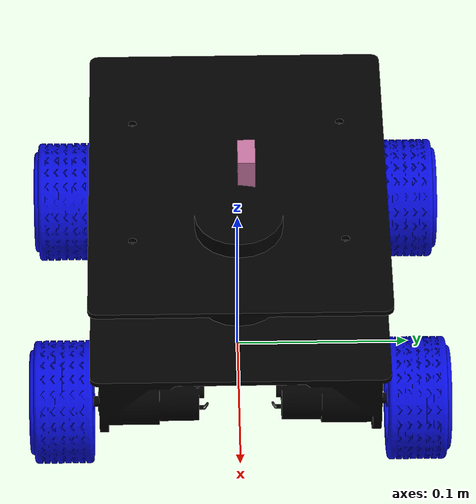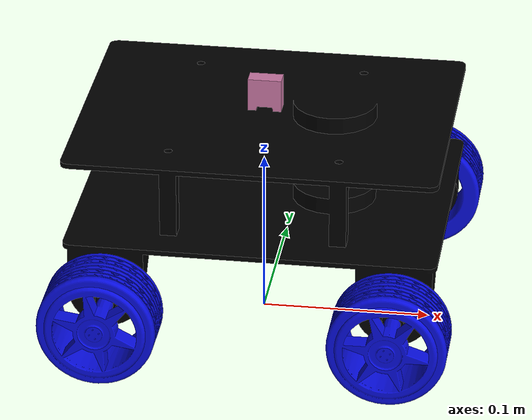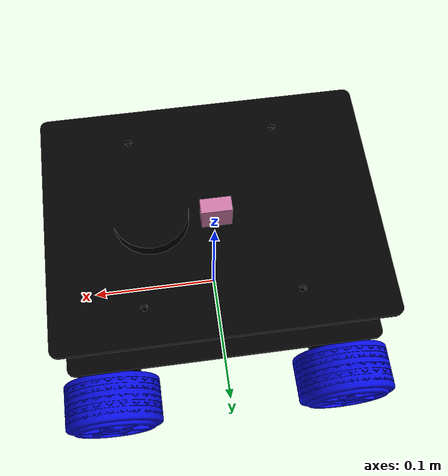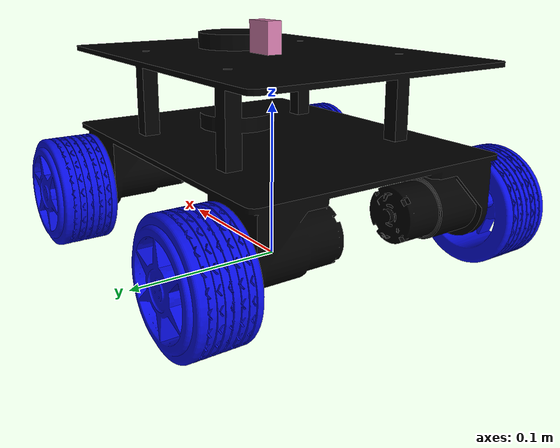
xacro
<?xml version="1.0"?>

<robot xmlns:xacro="http://www.ros.org/wiki/xacro" name="amr">

    <xacro:arg name="is_ignition" default="true"/>

    <xacro:arg name="is_sim" default="true"/>

    <xacro:include filename="$(find amr_description)/urdf/amr_gazebo.xacro"/>
    <xacro:include filename="$(find amr_description)/urdf/amr_ros2_control.xacro"/>

    <link name="base_footprint"/>

    <link name="base_link">
        <inertial>
            <origin xyz="0.00594894007924615 6.8421702571426E-18 0.00960527415060363" rpy="0 0 0"/>
            <mass value="0.421541524534237"/>
            <inertia
                ixx="0.000584551379875794"
                ixy="-6.20744420269712E-11"
                ixz="-8.68604635355335E-06"
                iyy="0.0010081339864591"
                iyz="-4.74470799360417E-21"
                izz="0.00154132934361883"/>
        </inertial>
        <visual>
            <origin xyz="0 0 0" rpy="0 0 0"/>
            <geometry>
                <mesh filename="package://amr_description/meshes/base_link.STL"/>
            </geometry>
            <material name="">
                <color rgba="0.0 0.0 0.0 1"/>
            </material>
        </visual>
        <collision>
            <origin xyz="0 0 0" rpy="0 0 0"/>
            <geometry>
                <mesh filename="package://amr_description/meshes/base_link.STL"/>
            </geometry>
        </collision>
    </link>

    <joint name="base_joint" type="fixed">
        <parent link="base_footprint"/>
        <child link="base_link"/>
        <origin rpy="0 0 0" xyz="0 0 0.078"/>
    </joint>

    <!-- Front Right Wheel -->
    <link name="front_right_wheel">
        <inertial>
            <origin xyz="-1.3341E-06 -1.0793E-06 0.017227" rpy="0 0 0"/>
            <mass value="0.071114"/>
            <inertia
                ixx="3.5289E-05"
                ixy="2.3237E-11"
                ixz="-1.1596E-10"
                iyy="3.5289E-05"
                iyz="-9.3849E-11"
                izz="5.7238E-05"/>
        </inertial>
        <visual>
            <origin xyz="0 0 0" rpy="0 0 0"/>
            <geometry>
                <mesh filename="package://amr_description/meshes/front_right_wheel.STL"/>
            </geometry>
            <material name="">
                <color rgba="0.03 0.05 0.87 1"/>
            </material>
        </visual>
        <collision>
            <origin xyz="0 0 0" rpy="0 0 0"/>
            <geometry>
                <sphere radius= "0.033"/>
            </geometry>
        </collision>
    </link>

    <joint name="front_right_joint" type="continuous">
        <origin xyz="0.087223 -0.1195 -0.039" rpy="-1.5708 0 0"/>
        <parent link="base_link"/>
        <child link="front_right_wheel"/>
        <axis xyz="0 0 1"/>
    </joint>

    <!-- Front Left Wheel -->
    <link name="front_left_wheel">
        <inertial>
            <origin xyz="-5.3305E-07 -1.6311E-06 -0.017227" rpy="0 0 0"/>
            <mass value="0.071114"/>
            <inertia
                ixx="3.5289E-05"
                ixy="3.2764E-11"
                ixz="4.6362E-11"
                iyy="3.5289E-05"
                iyz="1.418E-10"
                izz="5.7238E-05"/>
        </inertial>
        <visual>
            <origin xyz="0 0 0" rpy="0 0 0"/>
            <geometry>
                <mesh filename="package://amr_description/meshes/front_left_wheel.STL"/>
            </geometry>
            <material name="">
                <color rgba="0.03 0.05 0.87 1"/>
            </material>
        </visual>
        <collision>
            <origin xyz="0 0 0" rpy="0 0 0"/>
            <geometry>
                <sphere radius= "0.033"/>
            </geometry>
        </collision>
    </link>

    <joint name="front_left_joint" type="continuous">
        <origin xyz="0.087223 0.1195 -0.039" rpy="-1.5708 0 0"/>
        <parent link="base_link"/>
        <child link="front_left_wheel"/>
        <axis xyz="0 0 1"/>
    </joint>

    <!-- Rear Right Wheel -->
    <link name="rear_right_wheel">
        <inertial>
            <origin xyz="-1.1461E-06 -1.2772E-06 0.017227" rpy="0 0 0"/>
            <mass value="0.071114"/>
            <inertia
                ixx="3.5289E-05"
                ixy="1.4815E-11"
                ixz="-9.9618E-11"
                iyy="3.5289E-05"
                iyz="-1.1105E-10"
                izz="5.7238E-05"/>
        </inertial>
        <visual>
            <origin xyz="0 0 0" rpy="0 0 0"/>
            <geometry>
                <mesh filename="package://amr_description/meshes/rear_right_wheel.STL"/>
            </geometry>
            <material name="">
                <color rgba="0.03 0.05 0.87 1"/>
            </material>
        </visual>
        <collision>
            <origin xyz="0 0 0" rpy="0 0 0"/>
            <geometry>
                <sphere radius= "0.033"/>
            </geometry>
        </collision>
    </link>

    <joint name="rear_right_joint" type="continuous">
        <origin xyz="-0.082777 -0.1195 -0.039" rpy="-1.5708 0 0"/>
        <parent link="base_link"/>
        <child link="rear_right_wheel"/>
        <axis xyz="0 0 1"/>
    </joint>

    <!-- Rear Left Wheel -->
    <link name="rear_left_wheel">
        <inertial>
            <origin xyz="-8.082E-07 -1.5138E-06 -0.017227" rpy="0 0 0"/>
            <mass value="0.071114"/>
            <inertia
                ixx="3.5289E-05"
                ixy="3.0169E-11"
                ixz="7.028E-11"
                iyy="3.5289E-05"
                iyz="1.3159E-10"
                izz="5.7238E-05"/>
        </inertial>
        <visual>
            <origin xyz="0 0 0" rpy="0 0 0"/>
            <geometry>
                <mesh filename="package://amr_description/meshes/rear_left_wheel.STL"/>
            </geometry>
            <material name="">
                <color rgba="0.03 0.05 0.87 1"/>
            </material>
        </visual>
        <collision>
            <origin xyz="0 0 0" rpy="0 0 0"/>
            <geometry>
                <sphere radius= "0.033"/>
            </geometry>
        </collision>
    </link>

    <joint name="rear_left_joint" type="continuous">
        <origin xyz="-0.082777 0.1195 -0.039" rpy="-1.5708 0 0"/>
        <parent link="base_link"/>
        <child link="rear_left_wheel"/>
        <axis xyz="0 0 1"/>
    </joint>

    <link name="imu_link">
        <inertial>
            <origin xyz="-0.00552433659106688 0.000168210391520346 0.000514000497342681" rpy="0 0 0" />
            <mass value="0.000528415362211671" />
            <inertia ixx="1.46176048428261E-08" ixy="1.40015117949421E-10" ixz="-1.99633872937403E-12"
                    iyy="8.59662482954888E-09" iyz="7.52375112767959E-12"
                    izz="2.30279421279312E-08" />

        </inertial>
        <visual>
            <origin xyz="0 0 0" rpy="0 0 0"/>
            <geometry>
                <mesh filename="package://amr_description/meshes/imu_link.STL"/>
            </geometry>
        </visual>
        <collision>
            <origin xyz="0 0 0" rpy="0 0 0"/>
            <geometry>
                <mesh filename="package://amr_description/meshes/imu_link.STL"/>
            </geometry>
        </collision>
    </link>

    <joint name="imu_joint" type="fixed">
        <origin xyz="0 0 0.053" rpy="0 0 0" />
        <parent link="base_link" />
        <child link="imu_link" />
        <axis xyz="0 0 0" />
    </joint>

</robot>
